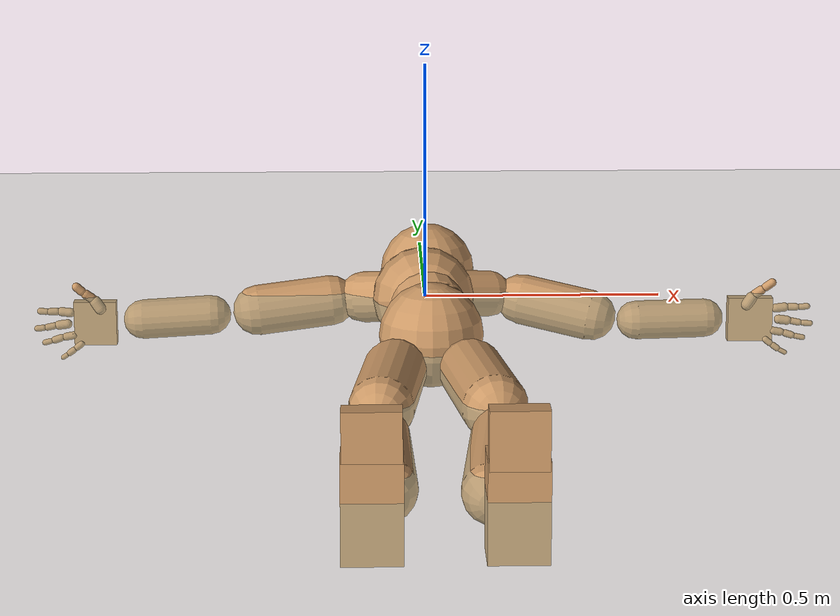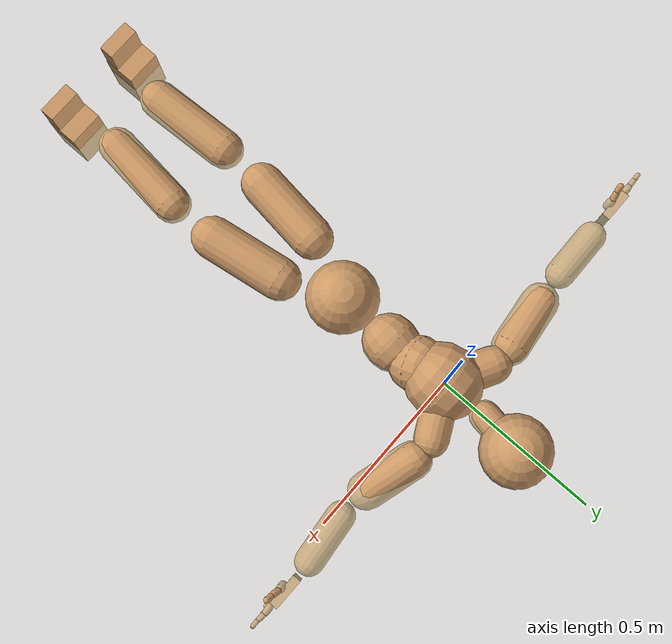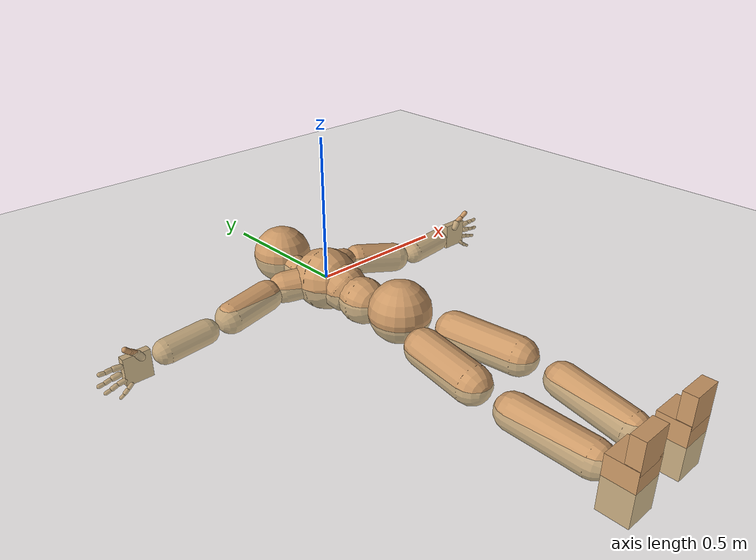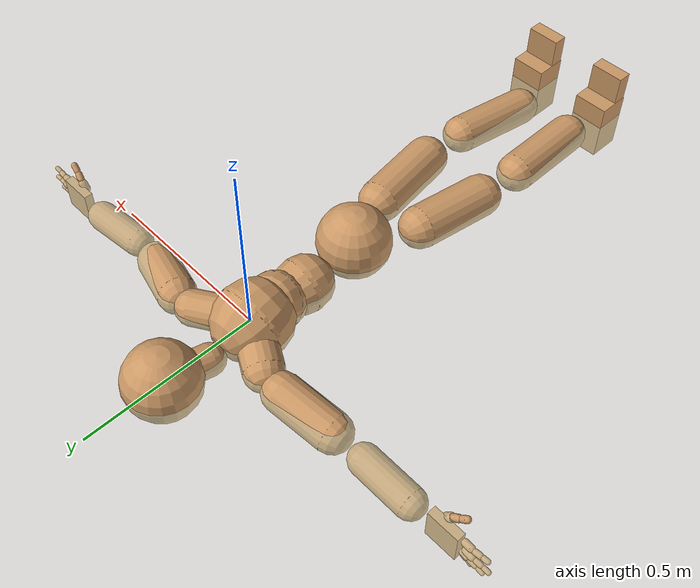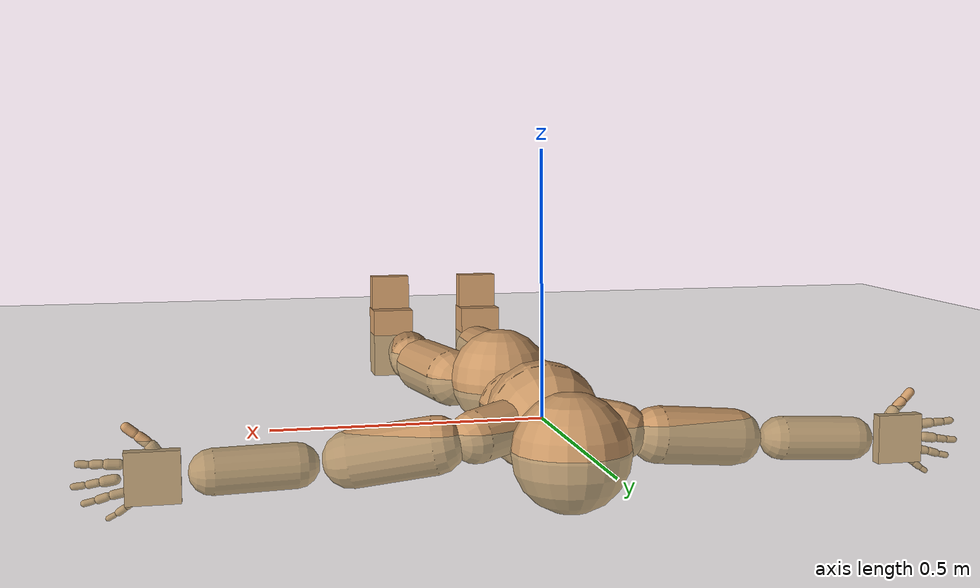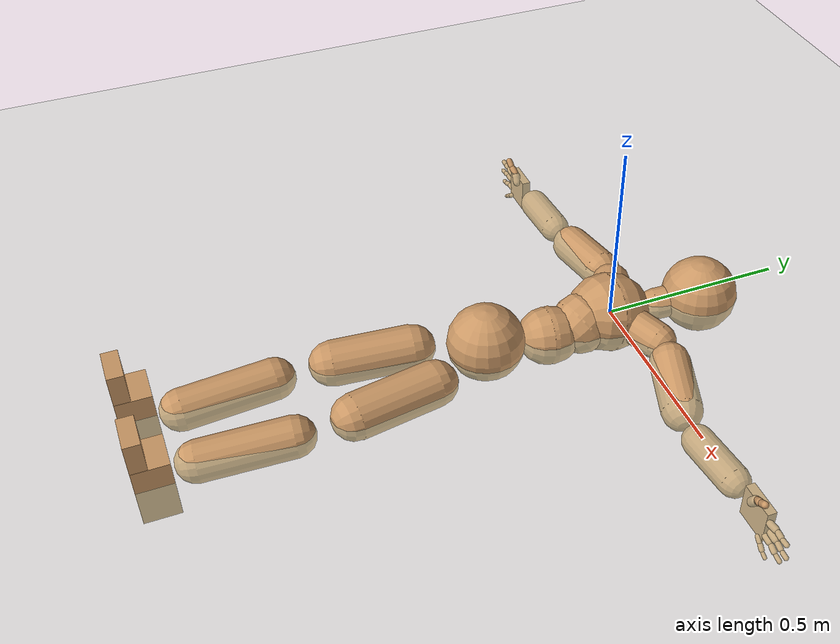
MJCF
<mujoco model="humanoid">
  <compiler coordinate="local"/>
  <default>
    <joint damping="0.0" armature="0.01" stiffness="0.0" limited="true"/>
    <geom conaffinity="1" condim="3" contype="7" margin="0.001" rgba="0.8 0.6 .4 1"/>
  </default>
  <asset>
    <texture type="skybox" builtin="gradient" rgb1=".4 .5 .6" rgb2="0 0 0" width="100" height="100"/>
    <texture builtin="flat" height="1278" mark="cross" markrgb="1 1 1" name="texgeom" random="0.01" rgb1="0.8 0.6 0.4" rgb2="0.8 0.6 0.4" type="cube" width="127"/>
    <texture builtin="checker" height="100" name="texplane" rgb1="0 0 0" rgb2="0.8 0.8 0.8" type="2d" width="100"/>
    <material name="MatPlane" reflectance="0.5" shininess="1" specular="1" texrepeat="60 60" texture="texplane"/>
    <material name="geom" texture="texgeom" texuniform="true"/>
  </asset>
  <worldbody>
    <light cutoff="100" diffuse="1 1 1" dir="-0 0 -1.3" directional="true" exponent="1" pos="0 0 1.3" specular=".1 .1 .1"/>
    <geom conaffinity="1" condim="3" name="floor" pos="0 0 0" rgba="0.8 0.9 0.8 1" size="100 100 .2" type="plane" material="MatPlane"/>
    <body name="Pelvis" pos="0.0032 -0.3644 0.0161">
      <freejoint name="Pelvis"/>
      <geom type="sphere" contype="1" conaffinity="1" density="4629.6296296296305" size="0.1038" pos="0.0000 0.0000 0.0000" name="Pelvis"/>
      <body name="L_Hip" pos="0.0606 -0.0952 -0.0238">
        <joint name="L_Hip_x" type="hinge" pos="0 0 0" axis="1 0 0" user="250 2.5 1 500 10 2" armature="0.01" range="-90.0000 90.0000" damping="0" stiffness="0"/>
        <joint name="L_Hip_y" type="hinge" pos="0 0 0" axis="0 1 0" user="250 2.5 1 500 10 2" armature="0.01" range="-90.0000 90.0000" damping="0" stiffness="0"/>
        <joint name="L_Hip_z" type="hinge" pos="0 0 0" axis="0 0 1" user="250 2.5 1 500 10 2" armature="0.01" range="-90.0000 90.0000" damping="0" stiffness="0"/>
        <geom type="capsule" contype="1" conaffinity="1" density="2040.816327" fromto="0.0112 -0.0740 -0.0013 0.0448 -0.2960 -0.0053" size="0.0618" name="L_Hip"/>
        <body name="L_Knee" pos="0.056 -0.37 -0.0066">
          <joint name="L_Knee_x" type="hinge" pos="0 0 0" axis="1 0 0" user="250 2.5 1 500 10 2" armature="0.01" range="-180.0000 180.0000" damping="0" stiffness="0"/>
          <joint name="L_Knee_y" type="hinge" pos="0 0 0" axis="0 1 0" user="250 2.5 1 500 10 2" armature="0.01" range="-5.6250 5.6250" damping="0" stiffness="0"/>
          <joint name="L_Knee_z" type="hinge" pos="0 0 0" axis="0 0 1" user="250 2.5 1 500 10 2" armature="0.01" range="-5.6250 5.6250" damping="0" stiffness="0"/>
          <geom type="capsule" contype="1" conaffinity="1" density="1234.567901" fromto="-0.0089 -0.0796 -0.0063 -0.0356 -0.3183 -0.0254" size="0.0544" name="L_Knee"/>
          <body name="L_Ankle" pos="-0.0445 -0.3978 -0.0317">
            <joint name="L_Ankle_x" type="hinge" pos="0 0 0" axis="1 0 0" user="150 2.5 1 500 10 2" armature="0.01" range="-90.0000 90.0000" damping="0" stiffness="0"/>
            <joint name="L_Ankle_y" type="hinge" pos="0 0 0" axis="0 1 0" user="150 2.5 1 500 10 2" armature="0.01" range="-90.0000 90.0000" damping="0" stiffness="0"/>
            <joint name="L_Ankle_z" type="hinge" pos="0 0 0" axis="0 0 1" user="150 2.5 1 500 10 2" armature="0.01" range="-90.0000 90.0000" damping="0" stiffness="0"/>
            <geom type="box" density="450.639226" pos="0.0422 -0.0281 0.0231" size="0.0511 0.0467 0.0864" quat="1.0000 0.0000 0.0000 0.0000" name="L_Ankle"/>
            <body name="L_Toe" pos="0.049 -0.057 0.1189">
              <joint name="L_Toe_x" type="hinge" pos="0 0 0" axis="1 0 0" user="150 1 1 500 1 1" armature="0.01" range="-90.0000 90.0000" damping="0" stiffness="0"/>
              <joint name="L_Toe_y" type="hinge" pos="0 0 0" axis="0 1 0" user="150 1 1 500 1 1" armature="0.01" range="-45.0000 45.0000" damping="0" stiffness="0"/>
              <joint name="L_Toe_z" type="hinge" pos="0 0 0" axis="0 0 1" user="150 1 1 500 1 1" armature="0.01" range="-45.0000 45.0000" damping="0" stiffness="0"/>
              <geom type="box" density="419.498693" pos="-0.0067 0.0031 0.0259" size="0.0491 0.021 0.0504" quat="1.0000 0.0000 0.0000 0.0000" name="L_Toe"/>
            </body>
          </body>
        </body>
      </body>
      <body name="R_Hip" pos="-0.0655 -0.1068 -0.0186">
        <joint name="R_Hip_x" type="hinge" pos="0 0 0" axis="1 0 0" user="250 2.5 1 500 10 2" armature="0.01" range="-90.0000 90.0000" damping="0" stiffness="0"/>
        <joint name="R_Hip_y" type="hinge" pos="0 0 0" axis="0 1 0" user="250 2.5 1 500 10 2" armature="0.01" range="-90.0000 90.0000" damping="0" stiffness="0"/>
        <joint name="R_Hip_z" type="hinge" pos="0 0 0" axis="0 0 1" user="250 2.5 1 500 10 2" armature="0.01" range="-90.0000 90.0000" damping="0" stiffness="0"/>
        <geom type="capsule" contype="1" conaffinity="1" density="2040.816327" fromto="-0.0091 -0.0707 -0.0029 -0.0364 -0.2827 -0.0118" size="0.0611" name="R_Hip"/>
        <body name="R_Knee" pos="-0.0455 -0.3534 -0.0147">
          <joint name="R_Knee_x" type="hinge" pos="0 0 0" axis="1 0 0" user="250 2.5 1 500 10 2" armature="0.01" range="-180.0000 180.0000" damping="0" stiffness="0"/>
          <joint name="R_Knee_y" type="hinge" pos="0 0 0" axis="0 1 0" user="250 2.5 1 500 10 2" armature="0.01" range="-5.6250 5.6250" damping="0" stiffness="0"/>
          <joint name="R_Knee_z" type="hinge" pos="0 0 0" axis="0 0 1" user="250 2.5 1 500 10 2" armature="0.01" range="-5.6250 5.6250" damping="0" stiffness="0"/>
          <geom type="capsule" contype="1" conaffinity="1" density="1234.567901" fromto="0.0030 -0.0810 -0.0039 0.0121 -0.3242 -0.0157" size="0.0561" name="R_Knee"/>
          <body name="R_Ankle" pos="0.0152 -0.4052 -0.0196">
            <joint name="R_Ankle_x" type="hinge" pos="0 0 0" axis="1 0 0" user="150 1 1 500 10 2" armature="0.01" range="-90.0000 90.0000" damping="0" stiffness="0"/>
            <joint name="R_Ankle_y" type="hinge" pos="0 0 0" axis="0 1 0" user="150 1 1 500 10 2" armature="0.01" range="-90.0000 90.0000" damping="0" stiffness="0"/>
            <joint name="R_Ankle_z" type="hinge" pos="0 0 0" axis="0 0 1" user="150 1 1 500 10 2" armature="0.01" range="-90.0000 90.0000" damping="0" stiffness="0"/>
            <geom type="box" density="450.636572" pos="-0.0250 -0.0258 0.0139" size="0.0511 0.0467 0.0864" quat="1.0000 0.0000 0.0000 0.0000" name="R_Ankle"/>
            <body name="R_Toe" pos="-0.0399 -0.0573 0.1198">
              <joint name="R_Toe_x" type="hinge" pos="0 0 0" axis="1 0 0" user="150 1 1 500 1 1" armature="0.01" range="-90.0000 90.0000" damping="0" stiffness="0"/>
              <joint name="R_Toe_y" type="hinge" pos="0 0 0" axis="0 1 0" user="150 1 1 500 1 1" armature="0.01" range="-45.0000 45.0000" damping="0" stiffness="0"/>
              <joint name="R_Toe_z" type="hinge" pos="0 0 0" axis="0 0 1" user="150 1 1 500 1 1" armature="0.01" range="-45.0000 45.0000" damping="0" stiffness="0"/>
              <geom type="box" density="419.50586" pos="0.0149 0.0058 0.0158" size="0.0491 0.021 0.0504" quat="1.0000 0.0000 0.0000 0.0000" name="R_Toe"/>
            </body>
          </body>
        </body>
      </body>
      <body name="Torso" pos="-0.0031 0.1131 -0.0313">
        <joint name="Torso_x" type="hinge" pos="0 0 0" axis="1 0 0" user="500 5 1 500 10 2" armature="0.01" range="-60.0000 60.0000" damping="0" stiffness="0"/>
        <joint name="Torso_y" type="hinge" pos="0 0 0" axis="0 1 0" user="500 5 1 500 10 2" armature="0.01" range="-60.0000 60.0000" damping="0" stiffness="0"/>
        <joint name="Torso_z" type="hinge" pos="0 0 0" axis="0 0 1" user="500 5 1 500 10 2" armature="0.01" range="-60.0000 60.0000" damping="0" stiffness="0"/>
        <geom type="capsule" contype="1" conaffinity="1" density="2040.816327" fromto="0.0051 0.0606 -0.0031 0.0062 0.0741 -0.0038" size="0.0782" name="Torso"/>
        <body name="Spine" pos="0.0113 0.1348 -0.0069">
          <joint name="Spine_x" type="hinge" pos="0 0 0" axis="1 0 0" user="500 5 1 500 10 2" armature="0.01" range="-60.0000 60.0000" damping="0" stiffness="0"/>
          <joint name="Spine_y" type="hinge" pos="0 0 0" axis="0 1 0" user="500 5 1 500 10 2" armature="0.01" range="-60.0000 60.0000" damping="0" stiffness="0"/>
          <joint name="Spine_z" type="hinge" pos="0 0 0" axis="0 0 1" user="500 5 1 500 10 2" armature="0.01" range="-60.0000 60.0000" damping="0" stiffness="0"/>
          <geom type="capsule" contype="1" conaffinity="1" density="2040.816327" fromto="-0.0055 0.0241 0.0145 -0.0068 0.0294 0.0177" size="0.081" name="Spine"/>
          <body name="Chest" pos="-0.0123 0.0535 0.0322">
            <joint name="Chest_x" type="hinge" pos="0 0 0" axis="1 0 0" user="500 5 1 500 10 2" armature="0.01" range="-60.0000 60.0000" damping="0" stiffness="0"/>
            <joint name="Chest_y" type="hinge" pos="0 0 0" axis="0 1 0" user="500 5 1 500 10 2" armature="0.01" range="-60.0000 60.0000" damping="0" stiffness="0"/>
            <joint name="Chest_z" type="hinge" pos="0 0 0" axis="0 0 1" user="500 5 1 500 10 2" armature="0.01" range="-60.0000 60.0000" damping="0" stiffness="0"/>
            <geom type="capsule" contype="1" conaffinity="1" density="2040.816327" fromto="-0.0024 0.0521 -0.0096 -0.0029 0.0637 -0.0117" size="0.1072" name="Chest"/>
            <body name="Neck" pos="-0.0131 0.1722 -0.0375">
              <joint name="Neck_x" type="hinge" pos="0 0 0" axis="1 0 0" user="150 1 1 250 50 4" armature="0.01" range="-180.0000 180.0000" damping="0" stiffness="0"/>
              <joint name="Neck_y" type="hinge" pos="0 0 0" axis="0 1 0" user="150 1 1 250 50 4" armature="0.01" range="-180.0000 180.0000" damping="0" stiffness="0"/>
              <joint name="Neck_z" type="hinge" pos="0 0 0" axis="0 0 1" user="150 1 1 250 50 4" armature="0.01" range="-180.0000 180.0000" damping="0" stiffness="0"/>
              <geom type="capsule" contype="1" conaffinity="1" density="1000" fromto="0.0052 0.0316 0.0039 0.0207 0.1266 0.0154" size="0.0435" name="Neck"/>
              <body name="Head" pos="0.0258 0.1582 0.0193">
                <joint name="Head_x" type="hinge" pos="0 0 0" axis="1 0 0" user="150 1 1 250 50 4" armature="0.01" range="-90.0000 90.0000" damping="0" stiffness="0"/>
                <joint name="Head_y" type="hinge" pos="0 0 0" axis="0 1 0" user="150 1 1 250 50 4" armature="0.01" range="-90.0000 90.0000" damping="0" stiffness="0"/>
                <joint name="Head_z" type="hinge" pos="0 0 0" axis="0 0 1" user="150 1 1 250 50 4" armature="0.01" range="-90.0000 90.0000" damping="0" stiffness="0"/>
                <geom type="sphere" contype="1" conaffinity="1" density="1000" size="0.1041" pos="0.0000 0.0000 0.0000" name="Head"/>
              </body>
            </body>
            <body name="L_Thorax" pos="0.0463 0.088 -0.01">
              <joint name="L_Thorax_x" type="hinge" pos="0 0 0" axis="1 0 0" user="200 2 1 500 50 4" armature="0.01" range="-180.0000 180.0000" damping="0" stiffness="0"/>
              <joint name="L_Thorax_y" type="hinge" pos="0 0 0" axis="0 1 0" user="200 2 1 500 50 4" armature="0.01" range="-180.0000 180.0000" damping="0" stiffness="0"/>
              <joint name="L_Thorax_z" type="hinge" pos="0 0 0" axis="0 0 1" user="200 2 1 500 50 4" armature="0.01" range="-180.0000 180.0000" damping="0" stiffness="0"/>
              <geom type="capsule" contype="1" conaffinity="1" density="1000" fromto="0.0234 0.0120 -0.0035 0.0936 0.0480 -0.0139" size="0.0497" name="L_Thorax"/>
              <body name="L_Shoulder" pos="0.117 0.06 -0.0174">
                <joint name="L_Shoulder_x" type="hinge" pos="0 0 0" axis="1 0 0" user="200 2 1 500 50 4" armature="0.01" range="-180.0000 180.0000" damping="0" stiffness="0"/>
                <joint name="L_Shoulder_y" type="hinge" pos="0 0 0" axis="0 1 0" user="200 2 1 500 50 4" armature="0.01" range="-180.0000 180.0000" damping="0" stiffness="0"/>
                <joint name="L_Shoulder_z" type="hinge" pos="0 0 0" axis="0 0 1" user="200 2 1 500 50 4" armature="0.01" range="-180.0000 180.0000" damping="0" stiffness="0"/>
                <geom type="capsule" contype="1" conaffinity="1" density="1000" fromto="0.0487 -0.0139 -0.0087 0.1949 -0.0556 -0.0348" size="0.054" name="L_Shoulder"/>
                <body name="L_Elbow" pos="0.2436 -0.0695 -0.0435">
                  <joint name="L_Elbow_x" type="hinge" pos="0 0 0" axis="1 0 0" user="150 1 1 150 10 2" armature="0.01" range="-720.0000 720.0000" damping="0" stiffness="0"/>
                  <joint name="L_Elbow_y" type="hinge" pos="0 0 0" axis="0 1 0" user="150 1 1 150 10 2" armature="0.01" range="-720.0000 720.0000" damping="0" stiffness="0"/>
                  <joint name="L_Elbow_z" type="hinge" pos="0 0 0" axis="0 0 1" user="150 1 1 150 10 2" armature="0.01" range="-720.0000 720.0000" damping="0" stiffness="0"/>
                  <geom type="capsule" contype="1" conaffinity="1" density="1000" fromto="0.0491 0.0051 -0.0001 0.1965 0.0205 -0.0005" size="0.0417" name="L_Elbow"/>
                  <body name="L_Wrist" pos="0.2456 0.0256 -0.0007">
                    <joint name="L_Wrist_x" type="hinge" pos="0 0 0" axis="1 0 0" user="100 1 1 150 1 1" armature="0.01" range="-180.0000 180.0000" damping="0" stiffness="0"/>
                    <joint name="L_Wrist_y" type="hinge" pos="0 0 0" axis="0 1 0" user="100 1 1 150 1 1" armature="0.01" range="-180.0000 180.0000" damping="0" stiffness="0"/>
                    <joint name="L_Wrist_z" type="hinge" pos="0 0 0" axis="0 0 1" user="100 1 1 150 1 1" armature="0.01" range="-180.0000 180.0000" damping="0" stiffness="0"/>
                    <geom type="box" density="1214.680284" pos="0.0519 -0.0008 -0.0026" size="0.0482 0.0126 0.0473" quat="1.0000 0.0000 0.0000 0.0000" name="L_Wrist"/>
                    <body name="L_Index1" pos="0.1012 -0.0077 0.0206">
                      <joint name="L_Index1_x" type="hinge" pos="0 0 0" axis="1 0 0" user="100 10 1 150" armature="0.01" range="-180.0000 180.0000" damping="0" stiffness="0"/>
                      <joint name="L_Index1_y" type="hinge" pos="0 0 0" axis="0 1 0" user="100 10 1 150" armature="0.01" range="-180.0000 180.0000" damping="0" stiffness="0"/>
                      <joint name="L_Index1_z" type="hinge" pos="0 0 0" axis="0 0 1" user="100 10 1 150" armature="0.01" range="-180.0000 180.0000" damping="0" stiffness="0"/>
                      <geom type="capsule" contype="1" conaffinity="1" density="1000" fromto="0.0064 0.0005 0.0006 0.0256 0.0019 0.0024" size="0.0095" name="L_Index1"/>
                      <body name="L_Index2" pos="0.032 0.0024 0.003">
                        <joint name="L_Index2_x" type="hinge" pos="0 0 0" axis="1 0 0" user="100 10 1 150" armature="0.01" range="-180.0000 180.0000" damping="0" stiffness="0"/>
                        <joint name="L_Index2_y" type="hinge" pos="0 0 0" axis="0 1 0" user="100 10 1 150" armature="0.01" range="-180.0000 180.0000" damping="0" stiffness="0"/>
                        <joint name="L_Index2_z" type="hinge" pos="0 0 0" axis="0 0 1" user="100 10 1 150" armature="0.01" range="-180.0000 180.0000" damping="0" stiffness="0"/>
                        <geom type="capsule" contype="1" conaffinity="1" density="1000" fromto="0.0045 -0.0005 -0.0000 0.0180 -0.0019 -0.0001" size="0.0078" name="L_Index2"/>
                        <body name="L_Index3" pos="0.0225 -0.0024 -0.0001">
                          <joint name="L_Index3_x" type="hinge" pos="0 0 0" axis="1 0 0" user="100 10 1 150" armature="0.01" range="-180.0000 180.0000" damping="0" stiffness="0"/>
                          <joint name="L_Index3_y" type="hinge" pos="0 0 0" axis="0 1 0" user="100 10 1 150" armature="0.01" range="-180.0000 180.0000" damping="0" stiffness="0"/>
                          <joint name="L_Index3_z" type="hinge" pos="0 0 0" axis="0 0 1" user="100 10 1 150" armature="0.01" range="-180.0000 180.0000" damping="0" stiffness="0"/>
                          <geom type="capsule" contype="1" conaffinity="1" density="1000" fromto="0.0049 -0.0001 0.0004 0.0196 -0.0003 0.0015" size="0.0066" name="L_Index3"/>
                        </body>
                      </body>
                    </body>
                    <body name="L_Middle1" pos="0.1087 -0.0053 -0.0035">
                      <joint name="L_Middle1_x" type="hinge" pos="0 0 0" axis="1 0 0" user="100 10 1 150" armature="0.01" range="-180.0000 180.0000" damping="0" stiffness="0"/>
                      <joint name="L_Middle1_y" type="hinge" pos="0 0 0" axis="0 1 0" user="100 10 1 150" armature="0.01" range="-180.0000 180.0000" damping="0" stiffness="0"/>
                      <joint name="L_Middle1_z" type="hinge" pos="0 0 0" axis="0 0 1" user="100 10 1 150" armature="0.01" range="-180.0000 180.0000" damping="0" stiffness="0"/>
                      <geom type="capsule" contype="1" conaffinity="1" density="1000" fromto="0.0062 0.0002 -0.0008 0.0246 0.0007 -0.0033" size="0.0097" name="L_Middle1"/>
                      <body name="L_Middle2" pos="0.0308 0.0009 -0.0041">
                        <joint name="L_Middle2_x" type="hinge" pos="0 0 0" axis="1 0 0" user="100 10 1 150" armature="0.01" range="-180.0000 180.0000" damping="0" stiffness="0"/>
                        <joint name="L_Middle2_y" type="hinge" pos="0 0 0" axis="0 1 0" user="100 10 1 150" armature="0.01" range="-180.0000 180.0000" damping="0" stiffness="0"/>
                        <joint name="L_Middle2_z" type="hinge" pos="0 0 0" axis="0 0 1" user="100 10 1 150" armature="0.01" range="-180.0000 180.0000" damping="0" stiffness="0"/>
                        <geom type="capsule" contype="1" conaffinity="1" density="1000" fromto="0.0047 -0.0004 -0.0008 0.0188 -0.0017 -0.0034" size="0.0072" name="L_Middle2"/>
                        <body name="L_Middle3" pos="0.0235 -0.0021 -0.0042">
                          <joint name="L_Middle3_x" type="hinge" pos="0 0 0" axis="1 0 0" user="100 10 1 150" armature="0.01" range="-180.0000 180.0000" damping="0" stiffness="0"/>
                          <joint name="L_Middle3_y" type="hinge" pos="0 0 0" axis="0 1 0" user="100 10 1 150" armature="0.01" range="-180.0000 180.0000" damping="0" stiffness="0"/>
                          <joint name="L_Middle3_z" type="hinge" pos="0 0 0" axis="0 0 1" user="100 10 1 150" armature="0.01" range="-180.0000 180.0000" damping="0" stiffness="0"/>
                          <geom type="capsule" contype="1" conaffinity="1" density="1000" fromto="0.0051 -0.0000 -0.0004 0.0204 -0.0001 -0.0018" size="0.0062" name="L_Middle3"/>
                        </body>
                      </body>
                    </body>
                    <body name="L_Pinky1" pos="0.0831 -0.014 -0.0446">
                      <joint name="L_Pinky1_x" type="hinge" pos="0 0 0" axis="1 0 0" user="100 10 1 150" armature="0.01" range="-180.0000 180.0000" damping="0" stiffness="0"/>
                      <joint name="L_Pinky1_y" type="hinge" pos="0 0 0" axis="0 1 0" user="100 10 1 150" armature="0.01" range="-180.0000 180.0000" damping="0" stiffness="0"/>
                      <joint name="L_Pinky1_z" type="hinge" pos="0 0 0" axis="0 0 1" user="100 10 1 150" armature="0.01" range="-180.0000 180.0000" damping="0" stiffness="0"/>
                      <geom type="capsule" contype="1" conaffinity="1" density="1000" fromto="0.0031 -0.0002 -0.0024 0.0126 -0.0010 -0.0098" size="0.0069" name="L_Pinky1"/>
                      <body name="L_Pinky2" pos="0.0157 -0.0012 -0.0122">
                        <joint name="L_Pinky2_x" type="hinge" pos="0 0 0" axis="1 0 0" user="100 10 1 150" armature="0.01" range="-180.0000 180.0000" damping="0" stiffness="0"/>
                        <joint name="L_Pinky2_y" type="hinge" pos="0 0 0" axis="0 1 0" user="100 10 1 150" armature="0.01" range="-180.0000 180.0000" damping="0" stiffness="0"/>
                        <joint name="L_Pinky2_z" type="hinge" pos="0 0 0" axis="0 0 1" user="100 10 1 150" armature="0.01" range="-180.0000 180.0000" damping="0" stiffness="0"/>
                        <geom type="capsule" contype="1" conaffinity="1" density="1000" fromto="0.0031 -0.0004 -0.0022 0.0126 -0.0014 -0.0090" size="0.0067" name="L_Pinky2"/>
                        <body name="L_Pinky3" pos="0.0157 -0.0018 -0.0112">
                          <joint name="L_Pinky3_x" type="hinge" pos="0 0 0" axis="1 0 0" user="100 10 1 150" armature="0.01" range="-180.0000 180.0000" damping="0" stiffness="0"/>
                          <joint name="L_Pinky3_y" type="hinge" pos="0 0 0" axis="0 1 0" user="100 10 1 150" armature="0.01" range="-180.0000 180.0000" damping="0" stiffness="0"/>
                          <joint name="L_Pinky3_z" type="hinge" pos="0 0 0" axis="0 0 1" user="100 10 1 150" armature="0.01" range="-180.0000 180.0000" damping="0" stiffness="0"/>
                          <geom type="capsule" contype="1" conaffinity="1" density="1000" fromto="0.0035 0.0000 -0.0018 0.0142 0.0002 -0.0074" size="0.005" name="L_Pinky3"/>
                        </body>
                      </body>
                    </body>
                    <body name="L_Ring1" pos="0.0966 -0.0084 -0.0277">
                      <joint name="L_Ring1_x" type="hinge" pos="0 0 0" axis="1 0 0" user="100 10 1 150" armature="0.01" range="-180.0000 180.0000" damping="0" stiffness="0"/>
                      <joint name="L_Ring1_y" type="hinge" pos="0 0 0" axis="0 1 0" user="100 10 1 150" armature="0.01" range="-180.0000 180.0000" damping="0" stiffness="0"/>
                      <joint name="L_Ring1_z" type="hinge" pos="0 0 0" axis="0 0 1" user="100 10 1 150" armature="0.01" range="-180.0000 180.0000" damping="0" stiffness="0"/>
                      <geom type="capsule" contype="1" conaffinity="1" density="1000" fromto="0.0057 0.0003 -0.0011 0.0226 0.0012 -0.0043" size="0.0083" name="L_Ring1"/>
                      <body name="L_Ring2" pos="0.0283 0.0015 -0.0053">
                        <joint name="L_Ring2_x" type="hinge" pos="0 0 0" axis="1 0 0" user="100 10 1 150" armature="0.01" range="-180.0000 180.0000" damping="0" stiffness="0"/>
                        <joint name="L_Ring2_y" type="hinge" pos="0 0 0" axis="0 1 0" user="100 10 1 150" armature="0.01" range="-180.0000 180.0000" damping="0" stiffness="0"/>
                        <joint name="L_Ring2_z" type="hinge" pos="0 0 0" axis="0 0 1" user="100 10 1 150" armature="0.01" range="-180.0000 180.0000" damping="0" stiffness="0"/>
                        <geom type="capsule" contype="1" conaffinity="1" density="1000" fromto="0.0046 -0.0003 -0.0014 0.0184 -0.0013 -0.0058" size="0.0076" name="L_Ring2"/>
                        <body name="L_Ring3" pos="0.0229 -0.0016 -0.0072">
                          <joint name="L_Ring3_x" type="hinge" pos="0 0 0" axis="1 0 0" user="100 10 1 150" armature="0.01" range="-180.0000 180.0000" damping="0" stiffness="0"/>
                          <joint name="L_Ring3_y" type="hinge" pos="0 0 0" axis="0 1 0" user="100 10 1 150" armature="0.01" range="-180.0000 180.0000" damping="0" stiffness="0"/>
                          <joint name="L_Ring3_z" type="hinge" pos="0 0 0" axis="0 0 1" user="100 10 1 150" armature="0.01" range="-180.0000 180.0000" damping="0" stiffness="0"/>
                          <geom type="capsule" contype="1" conaffinity="1" density="1000" fromto="0.0050 0.0001 -0.0010 0.0200 0.0003 -0.0042" size="0.0059" name="L_Ring3"/>
                        </body>
                      </body>
                    </body>
                    <body name="L_Thumb1" pos="0.0395 -0.0179 0.0272">
                      <joint name="L_Thumb1_x" type="hinge" pos="0 0 0" axis="1 0 0" user="100 10 1 150" armature="0.01" range="-180.0000 180.0000" damping="0" stiffness="0"/>
                      <joint name="L_Thumb1_y" type="hinge" pos="0 0 0" axis="0 1 0" user="100 10 1 150" armature="0.01" range="-180.0000 180.0000" damping="0" stiffness="0"/>
                      <joint name="L_Thumb1_z" type="hinge" pos="0 0 0" axis="0 0 1" user="100 10 1 150" armature="0.01" range="-180.0000 180.0000" damping="0" stiffness="0"/>
                      <geom type="capsule" contype="1" conaffinity="1" density="1000" fromto="0.0034 0.0002 0.0051 0.0135 0.0009 0.0203" size="0.0123" name="L_Thumb1"/>
                      <body name="L_Thumb2" pos="0.0169 0.0012 0.0254">
                        <joint name="L_Thumb2_x" type="hinge" pos="0 0 0" axis="1 0 0" user="100 10 1 150" armature="0.01" range="-180.0000 180.0000" damping="0" stiffness="0"/>
                        <joint name="L_Thumb2_y" type="hinge" pos="0 0 0" axis="0 1 0" user="100 10 1 150" armature="0.01" range="-180.0000 180.0000" damping="0" stiffness="0"/>
                        <joint name="L_Thumb2_z" type="hinge" pos="0 0 0" axis="0 0 1" user="100 10 1 150" armature="0.01" range="-180.0000 180.0000" damping="0" stiffness="0"/>
                        <geom type="capsule" contype="1" conaffinity="1" density="1000" fromto="0.0041 -0.0011 0.0031 0.0164 -0.0043 0.0125" size="0.0098" name="L_Thumb2"/>
                        <body name="L_Thumb3" pos="0.0205 -0.0053 0.0156">
                          <joint name="L_Thumb3_x" type="hinge" pos="0 0 0" axis="1 0 0" user="100 10 1 150" armature="0.01" range="-180.0000 180.0000" damping="0" stiffness="0"/>
                          <joint name="L_Thumb3_y" type="hinge" pos="0 0 0" axis="0 1 0" user="100 10 1 150" armature="0.01" range="-180.0000 180.0000" damping="0" stiffness="0"/>
                          <joint name="L_Thumb3_z" type="hinge" pos="0 0 0" axis="0 0 1" user="100 10 1 150" armature="0.01" range="-180.0000 180.0000" damping="0" stiffness="0"/>
                          <geom type="capsule" contype="1" conaffinity="1" density="1000" fromto="0.0045 -0.0007 0.0035 0.0180 -0.0027 0.0141" size="0.009" name="L_Thumb3"/>
                        </body>
                      </body>
                    </body>
                  </body>
                </body>
              </body>
            </body>
            <body name="R_Thorax" pos="-0.049 0.0875 -0.0163">
              <joint name="R_Thorax_x" type="hinge" pos="0 0 0" axis="1 0 0" user="200 2 1 150 10 2" armature="0.01" range="-180.0000 180.0000" damping="0" stiffness="0"/>
              <joint name="R_Thorax_y" type="hinge" pos="0 0 0" axis="0 1 0" user="200 2 1 150 10 2" armature="0.01" range="-180.0000 180.0000" damping="0" stiffness="0"/>
              <joint name="R_Thorax_z" type="hinge" pos="0 0 0" axis="0 0 1" user="200 2 1 150 10 2" armature="0.01" range="-180.0000 180.0000" damping="0" stiffness="0"/>
              <geom type="capsule" contype="1" conaffinity="1" density="1000" fromto="-0.0201 0.0110 -0.0030 -0.0802 0.0439 -0.0120" size="0.0547" name="R_Thorax"/>
              <body name="R_Shoulder" pos="-0.1003 0.0549 -0.0149">
                <joint name="R_Shoulder_x" type="hinge" pos="0 0 0" axis="1 0 0" user="200 2 1 250 10 2" armature="0.01" range="-180.0000 180.0000" damping="0" stiffness="0"/>
                <joint name="R_Shoulder_y" type="hinge" pos="0 0 0" axis="0 1 0" user="200 2 1 250 10 2" armature="0.01" range="-180.0000 180.0000" damping="0" stiffness="0"/>
                <joint name="R_Shoulder_z" type="hinge" pos="0 0 0" axis="0 0 1" user="200 2 1 250 10 2" armature="0.01" range="-180.0000 180.0000" damping="0" stiffness="0"/>
                <geom type="capsule" contype="1" conaffinity="1" density="1000" fromto="-0.0520 -0.0063 -0.0053 -0.2081 -0.0250 -0.0212" size="0.0539" name="R_Shoulder"/>
                <body name="R_Elbow" pos="-0.2602 -0.0313 -0.0265">
                  <joint name="R_Elbow_x" type="hinge" pos="0 0 0" axis="1 0 0" user="150 1 1 150 10 2" armature="0.01" range="-720.0000 720.0000" damping="0" stiffness="0"/>
                  <joint name="R_Elbow_y" type="hinge" pos="0 0 0" axis="0 1 0" user="150 1 1 150 10 2" armature="0.01" range="-720.0000 720.0000" damping="0" stiffness="0"/>
                  <joint name="R_Elbow_z" type="hinge" pos="0 0 0" axis="0 0 1" user="150 1 1 150 10 2" armature="0.01" range="-720.0000 720.0000" damping="0" stiffness="0"/>
                  <geom type="capsule" contype="1" conaffinity="1" density="1000" fromto="-0.0486 -0.0008 -0.0027 -0.1946 -0.0030 -0.0108" size="0.042" name="R_Elbow"/>
                  <body name="R_Wrist" pos="-0.2432 -0.0038 -0.0135">
                    <joint name="R_Wrist_x" type="hinge" pos="0 0 0" axis="1 0 0" user="100 1 1 150 1 1" armature="0.01" range="-180.0000 180.0000" damping="0" stiffness="0"/>
                    <joint name="R_Wrist_y" type="hinge" pos="0 0 0" axis="0 1 0" user="100 1 1 150 1 1" armature="0.01" range="-180.0000 180.0000" damping="0" stiffness="0"/>
                    <joint name="R_Wrist_z" type="hinge" pos="0 0 0" axis="0 0 1" user="100 1 1 150 1 1" armature="0.01" range="-180.0000 180.0000" damping="0" stiffness="0"/>
                    <geom type="box" density="1247.806385" pos="-0.0534 -0.0039 -0.0029" size="0.0453 0.0126 0.0473" quat="1.0000 0.0000 0.0000 0.0000" name="R_Wrist"/>
                    <body name="R_Index1" pos="-0.0993 -0.0109 0.0204">
                      <joint name="R_Index1_x" type="hinge" pos="0 0 0" axis="1 0 0" user="100 10 1 150" armature="0.01" range="-180.0000 180.0000" damping="0" stiffness="0"/>
                      <joint name="R_Index1_y" type="hinge" pos="0 0 0" axis="0 1 0" user="100 10 1 150" armature="0.01" range="-180.0000 180.0000" damping="0" stiffness="0"/>
                      <joint name="R_Index1_z" type="hinge" pos="0 0 0" axis="0 0 1" user="100 10 1 150" armature="0.01" range="-180.0000 180.0000" damping="0" stiffness="0"/>
                      <geom type="capsule" contype="1" conaffinity="1" density="1000" fromto="-0.0064 0.0005 0.0006 -0.0256 0.0019 0.0024" size="0.0095" name="R_Index1"/>
                      <body name="R_Index2" pos="-0.032 0.0024 0.003">
                        <joint name="R_Index2_x" type="hinge" pos="0 0 0" axis="1 0 0" user="100 10 1 150" armature="0.01" range="-180.0000 180.0000" damping="0" stiffness="0"/>
                        <joint name="R_Index2_y" type="hinge" pos="0 0 0" axis="0 1 0" user="100 10 1 150" armature="0.01" range="-180.0000 180.0000" damping="0" stiffness="0"/>
                        <joint name="R_Index2_z" type="hinge" pos="0 0 0" axis="0 0 1" user="100 10 1 150" armature="0.01" range="-180.0000 180.0000" damping="0" stiffness="0"/>
                        <geom type="capsule" contype="1" conaffinity="1" density="1000" fromto="-0.0045 -0.0005 -0.0000 -0.0180 -0.0019 -0.0001" size="0.0078" name="R_Index2"/>
                        <body name="R_Index3" pos="-0.0225 -0.0024 -0.0001">
                          <joint name="R_Index3_x" type="hinge" pos="0 0 0" axis="1 0 0" user="100 10 1 150" armature="0.01" range="-180.0000 180.0000" damping="0" stiffness="0"/>
                          <joint name="R_Index3_y" type="hinge" pos="0 0 0" axis="0 1 0" user="100 10 1 150" armature="0.01" range="-180.0000 180.0000" damping="0" stiffness="0"/>
                          <joint name="R_Index3_z" type="hinge" pos="0 0 0" axis="0 0 1" user="100 10 1 150" armature="0.01" range="-180.0000 180.0000" damping="0" stiffness="0"/>
                          <geom type="capsule" contype="1" conaffinity="1" density="1000" fromto="-0.0041 -0.0001 0.0004 -0.0164 -0.0003 0.0015" size="0.0069" name="R_Index3"/>
                        </body>
                      </body>
                    </body>
                    <body name="R_Middle1" pos="-0.1068 -0.0085 -0.0038">
                      <joint name="R_Middle1_x" type="hinge" pos="0 0 0" axis="1 0 0" user="100 10 1 150" armature="0.01" range="-180.0000 180.0000" damping="0" stiffness="0"/>
                      <joint name="R_Middle1_y" type="hinge" pos="0 0 0" axis="0 1 0" user="100 10 1 150" armature="0.01" range="-180.0000 180.0000" damping="0" stiffness="0"/>
                      <joint name="R_Middle1_z" type="hinge" pos="0 0 0" axis="0 0 1" user="100 10 1 150" armature="0.01" range="-180.0000 180.0000" damping="0" stiffness="0"/>
                      <geom type="capsule" contype="1" conaffinity="1" density="1000" fromto="-0.0062 0.0002 -0.0008 -0.0246 0.0007 -0.0033" size="0.0097" name="R_Middle1"/>
                      <body name="R_Middle2" pos="-0.0308 0.0009 -0.0041">
                        <joint name="R_Middle2_x" type="hinge" pos="0 0 0" axis="1 0 0" user="100 10 1 150" armature="0.01" range="-180.0000 180.0000" damping="0" stiffness="0"/>
                        <joint name="R_Middle2_y" type="hinge" pos="0 0 0" axis="0 1 0" user="100 10 1 150" armature="0.01" range="-180.0000 180.0000" damping="0" stiffness="0"/>
                        <joint name="R_Middle2_z" type="hinge" pos="0 0 0" axis="0 0 1" user="100 10 1 150" armature="0.01" range="-180.0000 180.0000" damping="0" stiffness="0"/>
                        <geom type="capsule" contype="1" conaffinity="1" density="1000" fromto="-0.0047 -0.0004 -0.0008 -0.0188 -0.0017 -0.0034" size="0.0072" name="R_Middle2"/>
                        <body name="R_Middle3" pos="-0.0235 -0.0021 -0.0042">
                          <joint name="R_Middle3_x" type="hinge" pos="0 0 0" axis="1 0 0" user="100 10 1 150" armature="0.01" range="-180.0000 180.0000" damping="0" stiffness="0"/>
                          <joint name="R_Middle3_y" type="hinge" pos="0 0 0" axis="0 1 0" user="100 10 1 150" armature="0.01" range="-180.0000 180.0000" damping="0" stiffness="0"/>
                          <joint name="R_Middle3_z" type="hinge" pos="0 0 0" axis="0 0 1" user="100 10 1 150" armature="0.01" range="-180.0000 180.0000" damping="0" stiffness="0"/>
                          <geom type="capsule" contype="1" conaffinity="1" density="1000" fromto="-0.0043 -0.0000 -0.0004 -0.0172 -0.0001 -0.0018" size="0.0065" name="R_Middle3"/>
                        </body>
                      </body>
                    </body>
                    <body name="R_Pinky1" pos="-0.0812 -0.0172 -0.0449">
                      <joint name="R_Pinky1_x" type="hinge" pos="0 0 0" axis="1 0 0" user="100 10 1 150" armature="0.01" range="-180.0000 180.0000" damping="0" stiffness="0"/>
                      <joint name="R_Pinky1_y" type="hinge" pos="0 0 0" axis="0 1 0" user="100 10 1 150" armature="0.01" range="-180.0000 180.0000" damping="0" stiffness="0"/>
                      <joint name="R_Pinky1_z" type="hinge" pos="0 0 0" axis="0 0 1" user="100 10 1 150" armature="0.01" range="-180.0000 180.0000" damping="0" stiffness="0"/>
                      <geom type="capsule" contype="1" conaffinity="1" density="1000" fromto="-0.0031 -0.0002 -0.0024 -0.0126 -0.0010 -0.0098" size="0.0069" name="R_Pinky1"/>
                      <body name="R_Pinky2" pos="-0.0157 -0.0012 -0.0122">
                        <joint name="R_Pinky2_x" type="hinge" pos="0 0 0" axis="1 0 0" user="100 10 1 150" armature="0.01" range="-180.0000 180.0000" damping="0" stiffness="0"/>
                        <joint name="R_Pinky2_y" type="hinge" pos="0 0 0" axis="0 1 0" user="100 10 1 150" armature="0.01" range="-180.0000 180.0000" damping="0" stiffness="0"/>
                        <joint name="R_Pinky2_z" type="hinge" pos="0 0 0" axis="0 0 1" user="100 10 1 150" armature="0.01" range="-180.0000 180.0000" damping="0" stiffness="0"/>
                        <geom type="capsule" contype="1" conaffinity="1" density="1000" fromto="-0.0031 -0.0004 -0.0022 -0.0126 -0.0014 -0.0090" size="0.0067" name="R_Pinky2"/>
                        <body name="R_Pinky3" pos="-0.0157 -0.0018 -0.0112">
                          <joint name="R_Pinky3_x" type="hinge" pos="0 0 0" axis="1 0 0" user="100 10 1 150" armature="0.01" range="-180.0000 180.0000" damping="0" stiffness="0"/>
                          <joint name="R_Pinky3_y" type="hinge" pos="0 0 0" axis="0 1 0" user="100 10 1 150" armature="0.01" range="-180.0000 180.0000" damping="0" stiffness="0"/>
                          <joint name="R_Pinky3_z" type="hinge" pos="0 0 0" axis="0 0 1" user="100 10 1 150" armature="0.01" range="-180.0000 180.0000" damping="0" stiffness="0"/>
                          <geom type="capsule" contype="1" conaffinity="1" density="1000" fromto="-0.0027 0.0000 -0.0018 -0.0110 0.0002 -0.0074" size="0.0053" name="R_Pinky3"/>
                        </body>
                      </body>
                    </body>
                    <body name="R_Ring1" pos="-0.0947 -0.0116 -0.028">
                      <joint name="R_Ring1_x" type="hinge" pos="0 0 0" axis="1 0 0" user="100 10 1 150" armature="0.01" range="-180.0000 180.0000" damping="0" stiffness="0"/>
                      <joint name="R_Ring1_y" type="hinge" pos="0 0 0" axis="0 1 0" user="100 10 1 150" armature="0.01" range="-180.0000 180.0000" damping="0" stiffness="0"/>
                      <joint name="R_Ring1_z" type="hinge" pos="0 0 0" axis="0 0 1" user="100 10 1 150" armature="0.01" range="-180.0000 180.0000" damping="0" stiffness="0"/>
                      <geom type="capsule" contype="1" conaffinity="1" density="1000" fromto="-0.0057 0.0003 -0.0011 -0.0226 0.0012 -0.0043" size="0.0083" name="R_Ring1"/>
                      <body name="R_Ring2" pos="-0.0283 0.0015 -0.0053">
                        <joint name="R_Ring2_x" type="hinge" pos="0 0 0" axis="1 0 0" user="100 10 1 150" armature="0.01" range="-180.0000 180.0000" damping="0" stiffness="0"/>
                        <joint name="R_Ring2_y" type="hinge" pos="0 0 0" axis="0 1 0" user="100 10 1 150" armature="0.01" range="-180.0000 180.0000" damping="0" stiffness="0"/>
                        <joint name="R_Ring2_z" type="hinge" pos="0 0 0" axis="0 0 1" user="100 10 1 150" armature="0.01" range="-180.0000 180.0000" damping="0" stiffness="0"/>
                        <geom type="capsule" contype="1" conaffinity="1" density="1000" fromto="-0.0046 -0.0003 -0.0014 -0.0184 -0.0013 -0.0058" size="0.0076" name="R_Ring2"/>
                        <body name="R_Ring3" pos="-0.0229 -0.0016 -0.0072">
                          <joint name="R_Ring3_x" type="hinge" pos="0 0 0" axis="1 0 0" user="100 10 1 150" armature="0.01" range="-180.0000 180.0000" damping="0" stiffness="0"/>
                          <joint name="R_Ring3_y" type="hinge" pos="0 0 0" axis="0 1 0" user="100 10 1 150" armature="0.01" range="-180.0000 180.0000" damping="0" stiffness="0"/>
                          <joint name="R_Ring3_z" type="hinge" pos="0 0 0" axis="0 0 1" user="100 10 1 150" armature="0.01" range="-180.0000 180.0000" damping="0" stiffness="0"/>
                          <geom type="capsule" contype="1" conaffinity="1" density="1000" fromto="-0.0042 0.0001 -0.0010 -0.0168 0.0003 -0.0042" size="0.0061" name="R_Ring3"/>
                        </body>
                      </body>
                    </body>
                    <body name="R_Thumb1" pos="-0.0376 -0.021 0.0269">
                      <joint name="R_Thumb1_x" type="hinge" pos="0 0 0" axis="1 0 0" user="100 10 1 150" armature="0.01" range="-180.0000 180.0000" damping="0" stiffness="0"/>
                      <joint name="R_Thumb1_y" type="hinge" pos="0 0 0" axis="0 1 0" user="100 10 1 150" armature="0.01" range="-180.0000 180.0000" damping="0" stiffness="0"/>
                      <joint name="R_Thumb1_z" type="hinge" pos="0 0 0" axis="0 0 1" user="100 10 1 150" armature="0.01" range="-180.0000 180.0000" damping="0" stiffness="0"/>
                      <geom type="capsule" contype="1" conaffinity="1" density="1000" fromto="-0.0034 0.0002 0.0051 -0.0135 0.0009 0.0203" size="0.0123" name="R_Thumb1"/>
                      <body name="R_Thumb2" pos="-0.0169 0.0012 0.0254">
                        <joint name="R_Thumb2_x" type="hinge" pos="0 0 0" axis="1 0 0" user="100 10 1 150" armature="0.01" range="-180.0000 180.0000" damping="0" stiffness="0"/>
                        <joint name="R_Thumb2_y" type="hinge" pos="0 0 0" axis="0 1 0" user="100 10 1 150" armature="0.01" range="-180.0000 180.0000" damping="0" stiffness="0"/>
                        <joint name="R_Thumb2_z" type="hinge" pos="0 0 0" axis="0 0 1" user="100 10 1 150" armature="0.01" range="-180.0000 180.0000" damping="0" stiffness="0"/>
                        <geom type="capsule" contype="1" conaffinity="1" density="1000" fromto="-0.0041 -0.0011 0.0031 -0.0164 -0.0042 0.0125" size="0.0098" name="R_Thumb2"/>
                        <body name="R_Thumb3" pos="-0.0205 -0.0053 0.0156">
                          <joint name="R_Thumb3_x" type="hinge" pos="0 0 0" axis="1 0 0" user="100 10 1 150" armature="0.01" range="-180.0000 180.0000" damping="0" stiffness="0"/>
                          <joint name="R_Thumb3_y" type="hinge" pos="0 0 0" axis="0 1 0" user="100 10 1 150" armature="0.01" range="-180.0000 180.0000" damping="0" stiffness="0"/>
                          <joint name="R_Thumb3_z" type="hinge" pos="0 0 0" axis="0 0 1" user="100 10 1 150" armature="0.01" range="-180.0000 180.0000" damping="0" stiffness="0"/>
                          <geom type="capsule" contype="1" conaffinity="1" density="1000" fromto="-0.0037 -0.0007 0.0035 -0.0148 -0.0026 0.0141" size="0.0092" name="R_Thumb3"/>
                        </body>
                      </body>
                    </body>
                  </body>
                </body>
              </body>
            </body>
          </body>
        </body>
      </body>
    </body>
  </worldbody>
  <actuator>
    <motor name="L_Hip_x" joint="L_Hip_x" gear="1"/>
    <motor name="L_Hip_y" joint="L_Hip_y" gear="1"/>
    <motor name="L_Hip_z" joint="L_Hip_z" gear="1"/>
    <motor name="L_Knee_x" joint="L_Knee_x" gear="1"/>
    <motor name="L_Knee_y" joint="L_Knee_y" gear="1"/>
    <motor name="L_Knee_z" joint="L_Knee_z" gear="1"/>
    <motor name="L_Ankle_x" joint="L_Ankle_x" gear="1"/>
    <motor name="L_Ankle_y" joint="L_Ankle_y" gear="1"/>
    <motor name="L_Ankle_z" joint="L_Ankle_z" gear="1"/>
    <motor name="L_Toe_x" joint="L_Toe_x" gear="1"/>
    <motor name="L_Toe_y" joint="L_Toe_y" gear="1"/>
    <motor name="L_Toe_z" joint="L_Toe_z" gear="1"/>
    <motor name="R_Hip_x" joint="R_Hip_x" gear="1"/>
    <motor name="R_Hip_y" joint="R_Hip_y" gear="1"/>
    <motor name="R_Hip_z" joint="R_Hip_z" gear="1"/>
    <motor name="R_Knee_x" joint="R_Knee_x" gear="1"/>
    <motor name="R_Knee_y" joint="R_Knee_y" gear="1"/>
    <motor name="R_Knee_z" joint="R_Knee_z" gear="1"/>
    <motor name="R_Ankle_x" joint="R_Ankle_x" gear="1"/>
    <motor name="R_Ankle_y" joint="R_Ankle_y" gear="1"/>
    <motor name="R_Ankle_z" joint="R_Ankle_z" gear="1"/>
    <motor name="R_Toe_x" joint="R_Toe_x" gear="1"/>
    <motor name="R_Toe_y" joint="R_Toe_y" gear="1"/>
    <motor name="R_Toe_z" joint="R_Toe_z" gear="1"/>
    <motor name="Torso_x" joint="Torso_x" gear="1"/>
    <motor name="Torso_y" joint="Torso_y" gear="1"/>
    <motor name="Torso_z" joint="Torso_z" gear="1"/>
    <motor name="Spine_x" joint="Spine_x" gear="1"/>
    <motor name="Spine_y" joint="Spine_y" gear="1"/>
    <motor name="Spine_z" joint="Spine_z" gear="1"/>
    <motor name="Chest_x" joint="Chest_x" gear="1"/>
    <motor name="Chest_y" joint="Chest_y" gear="1"/>
    <motor name="Chest_z" joint="Chest_z" gear="1"/>
    <motor name="Neck_x" joint="Neck_x" gear="1"/>
    <motor name="Neck_y" joint="Neck_y" gear="1"/>
    <motor name="Neck_z" joint="Neck_z" gear="1"/>
    <motor name="Head_x" joint="Head_x" gear="1"/>
    <motor name="Head_y" joint="Head_y" gear="1"/>
    <motor name="Head_z" joint="Head_z" gear="1"/>
    <motor name="L_Thorax_x" joint="L_Thorax_x" gear="1"/>
    <motor name="L_Thorax_y" joint="L_Thorax_y" gear="1"/>
    <motor name="L_Thorax_z" joint="L_Thorax_z" gear="1"/>
    <motor name="L_Shoulder_x" joint="L_Shoulder_x" gear="1"/>
    <motor name="L_Shoulder_y" joint="L_Shoulder_y" gear="1"/>
    <motor name="L_Shoulder_z" joint="L_Shoulder_z" gear="1"/>
    <motor name="L_Elbow_x" joint="L_Elbow_x" gear="1"/>
    <motor name="L_Elbow_y" joint="L_Elbow_y" gear="1"/>
    <motor name="L_Elbow_z" joint="L_Elbow_z" gear="1"/>
    <motor name="L_Wrist_x" joint="L_Wrist_x" gear="1"/>
    <motor name="L_Wrist_y" joint="L_Wrist_y" gear="1"/>
    <motor name="L_Wrist_z" joint="L_Wrist_z" gear="1"/>
    <motor name="L_Index1_x" joint="L_Index1_x" gear="1"/>
    <motor name="L_Index1_y" joint="L_Index1_y" gear="1"/>
    <motor name="L_Index1_z" joint="L_Index1_z" gear="1"/>
    <motor name="L_Index2_x" joint="L_Index2_x" gear="1"/>
    <motor name="L_Index2_y" joint="L_Index2_y" gear="1"/>
    <motor name="L_Index2_z" joint="L_Index2_z" gear="1"/>
    <motor name="L_Index3_x" joint="L_Index3_x" gear="1"/>
    <motor name="L_Index3_y" joint="L_Index3_y" gear="1"/>
    <motor name="L_Index3_z" joint="L_Index3_z" gear="1"/>
    <motor name="L_Middle1_x" joint="L_Middle1_x" gear="1"/>
    <motor name="L_Middle1_y" joint="L_Middle1_y" gear="1"/>
    <motor name="L_Middle1_z" joint="L_Middle1_z" gear="1"/>
    <motor name="L_Middle2_x" joint="L_Middle2_x" gear="1"/>
    <motor name="L_Middle2_y" joint="L_Middle2_y" gear="1"/>
    <motor name="L_Middle2_z" joint="L_Middle2_z" gear="1"/>
    <motor name="L_Middle3_x" joint="L_Middle3_x" gear="1"/>
    <motor name="L_Middle3_y" joint="L_Middle3_y" gear="1"/>
    <motor name="L_Middle3_z" joint="L_Middle3_z" gear="1"/>
    <motor name="L_Pinky1_x" joint="L_Pinky1_x" gear="1"/>
    <motor name="L_Pinky1_y" joint="L_Pinky1_y" gear="1"/>
    <motor name="L_Pinky1_z" joint="L_Pinky1_z" gear="1"/>
    <motor name="L_Pinky2_x" joint="L_Pinky2_x" gear="1"/>
    <motor name="L_Pinky2_y" joint="L_Pinky2_y" gear="1"/>
    <motor name="L_Pinky2_z" joint="L_Pinky2_z" gear="1"/>
    <motor name="L_Pinky3_x" joint="L_Pinky3_x" gear="1"/>
    <motor name="L_Pinky3_y" joint="L_Pinky3_y" gear="1"/>
    <motor name="L_Pinky3_z" joint="L_Pinky3_z" gear="1"/>
    <motor name="L_Ring1_x" joint="L_Ring1_x" gear="1"/>
    <motor name="L_Ring1_y" joint="L_Ring1_y" gear="1"/>
    <motor name="L_Ring1_z" joint="L_Ring1_z" gear="1"/>
    <motor name="L_Ring2_x" joint="L_Ring2_x" gear="1"/>
    <motor name="L_Ring2_y" joint="L_Ring2_y" gear="1"/>
    <motor name="L_Ring2_z" joint="L_Ring2_z" gear="1"/>
    <motor name="L_Ring3_x" joint="L_Ring3_x" gear="1"/>
    <motor name="L_Ring3_y" joint="L_Ring3_y" gear="1"/>
    <motor name="L_Ring3_z" joint="L_Ring3_z" gear="1"/>
    <motor name="L_Thumb1_x" joint="L_Thumb1_x" gear="1"/>
    <motor name="L_Thumb1_y" joint="L_Thumb1_y" gear="1"/>
    <motor name="L_Thumb1_z" joint="L_Thumb1_z" gear="1"/>
    <motor name="L_Thumb2_x" joint="L_Thumb2_x" gear="1"/>
    <motor name="L_Thumb2_y" joint="L_Thumb2_y" gear="1"/>
    <motor name="L_Thumb2_z" joint="L_Thumb2_z" gear="1"/>
    <motor name="L_Thumb3_x" joint="L_Thumb3_x" gear="1"/>
    <motor name="L_Thumb3_y" joint="L_Thumb3_y" gear="1"/>
    <motor name="L_Thumb3_z" joint="L_Thumb3_z" gear="1"/>
    <motor name="R_Thorax_x" joint="R_Thorax_x" gear="1"/>
    <motor name="R_Thorax_y" joint="R_Thorax_y" gear="1"/>
    <motor name="R_Thorax_z" joint="R_Thorax_z" gear="1"/>
    <motor name="R_Shoulder_x" joint="R_Shoulder_x" gear="1"/>
    <motor name="R_Shoulder_y" joint="R_Shoulder_y" gear="1"/>
    <motor name="R_Shoulder_z" joint="R_Shoulder_z" gear="1"/>
    <motor name="R_Elbow_x" joint="R_Elbow_x" gear="1"/>
    <motor name="R_Elbow_y" joint="R_Elbow_y" gear="1"/>
    <motor name="R_Elbow_z" joint="R_Elbow_z" gear="1"/>
    <motor name="R_Wrist_x" joint="R_Wrist_x" gear="1"/>
    <motor name="R_Wrist_y" joint="R_Wrist_y" gear="1"/>
    <motor name="R_Wrist_z" joint="R_Wrist_z" gear="1"/>
    <motor name="R_Index1_x" joint="R_Index1_x" gear="1"/>
    <motor name="R_Index1_y" joint="R_Index1_y" gear="1"/>
    <motor name="R_Index1_z" joint="R_Index1_z" gear="1"/>
    <motor name="R_Index2_x" joint="R_Index2_x" gear="1"/>
    <motor name="R_Index2_y" joint="R_Index2_y" gear="1"/>
    <motor name="R_Index2_z" joint="R_Index2_z" gear="1"/>
    <motor name="R_Index3_x" joint="R_Index3_x" gear="1"/>
    <motor name="R_Index3_y" joint="R_Index3_y" gear="1"/>
    <motor name="R_Index3_z" joint="R_Index3_z" gear="1"/>
    <motor name="R_Middle1_x" joint="R_Middle1_x" gear="1"/>
    <motor name="R_Middle1_y" joint="R_Middle1_y" gear="1"/>
    <motor name="R_Middle1_z" joint="R_Middle1_z" gear="1"/>
    <motor name="R_Middle2_x" joint="R_Middle2_x" gear="1"/>
    <motor name="R_Middle2_y" joint="R_Middle2_y" gear="1"/>
    <motor name="R_Middle2_z" joint="R_Middle2_z" gear="1"/>
    <motor name="R_Middle3_x" joint="R_Middle3_x" gear="1"/>
    <motor name="R_Middle3_y" joint="R_Middle3_y" gear="1"/>
    <motor name="R_Middle3_z" joint="R_Middle3_z" gear="1"/>
    <motor name="R_Pinky1_x" joint="R_Pinky1_x" gear="1"/>
    <motor name="R_Pinky1_y" joint="R_Pinky1_y" gear="1"/>
    <motor name="R_Pinky1_z" joint="R_Pinky1_z" gear="1"/>
    <motor name="R_Pinky2_x" joint="R_Pinky2_x" gear="1"/>
    <motor name="R_Pinky2_y" joint="R_Pinky2_y" gear="1"/>
    <motor name="R_Pinky2_z" joint="R_Pinky2_z" gear="1"/>
    <motor name="R_Pinky3_x" joint="R_Pinky3_x" gear="1"/>
    <motor name="R_Pinky3_y" joint="R_Pinky3_y" gear="1"/>
    <motor name="R_Pinky3_z" joint="R_Pinky3_z" gear="1"/>
    <motor name="R_Ring1_x" joint="R_Ring1_x" gear="1"/>
    <motor name="R_Ring1_y" joint="R_Ring1_y" gear="1"/>
    <motor name="R_Ring1_z" joint="R_Ring1_z" gear="1"/>
    <motor name="R_Ring2_x" joint="R_Ring2_x" gear="1"/>
    <motor name="R_Ring2_y" joint="R_Ring2_y" gear="1"/>
    <motor name="R_Ring2_z" joint="R_Ring2_z" gear="1"/>
    <motor name="R_Ring3_x" joint="R_Ring3_x" gear="1"/>
    <motor name="R_Ring3_y" joint="R_Ring3_y" gear="1"/>
    <motor name="R_Ring3_z" joint="R_Ring3_z" gear="1"/>
    <motor name="R_Thumb1_x" joint="R_Thumb1_x" gear="1"/>
    <motor name="R_Thumb1_y" joint="R_Thumb1_y" gear="1"/>
    <motor name="R_Thumb1_z" joint="R_Thumb1_z" gear="1"/>
    <motor name="R_Thumb2_x" joint="R_Thumb2_x" gear="1"/>
    <motor name="R_Thumb2_y" joint="R_Thumb2_y" gear="1"/>
    <motor name="R_Thumb2_z" joint="R_Thumb2_z" gear="1"/>
    <motor name="R_Thumb3_x" joint="R_Thumb3_x" gear="1"/>
    <motor name="R_Thumb3_y" joint="R_Thumb3_y" gear="1"/>
    <motor name="R_Thumb3_z" joint="R_Thumb3_z" gear="1"/>
  </actuator>
  <contact>
    <exclude body1="Torso" body2="Chest"/>
    <exclude body1="Head" body2="Chest"/>
    <exclude body1="R_Knee" body2="R_Toe"/>
    <exclude body1="R_Knee" body2="L_Ankle"/>
    <exclude body1="R_Knee" body2="L_Toe"/>
    <exclude body1="L_Knee" body2="L_Toe"/>
    <exclude body1="L_Knee" body2="R_Ankle"/>
    <exclude body1="L_Knee" body2="R_Toe"/>
    <exclude body1="L_Shoulder" body2="Chest"/>
    <exclude body1="R_Shoulder" body2="Chest"/>
  </contact>
  <sensor/>
  <size njmax="700" nconmax="700"/>
</mujoco>
